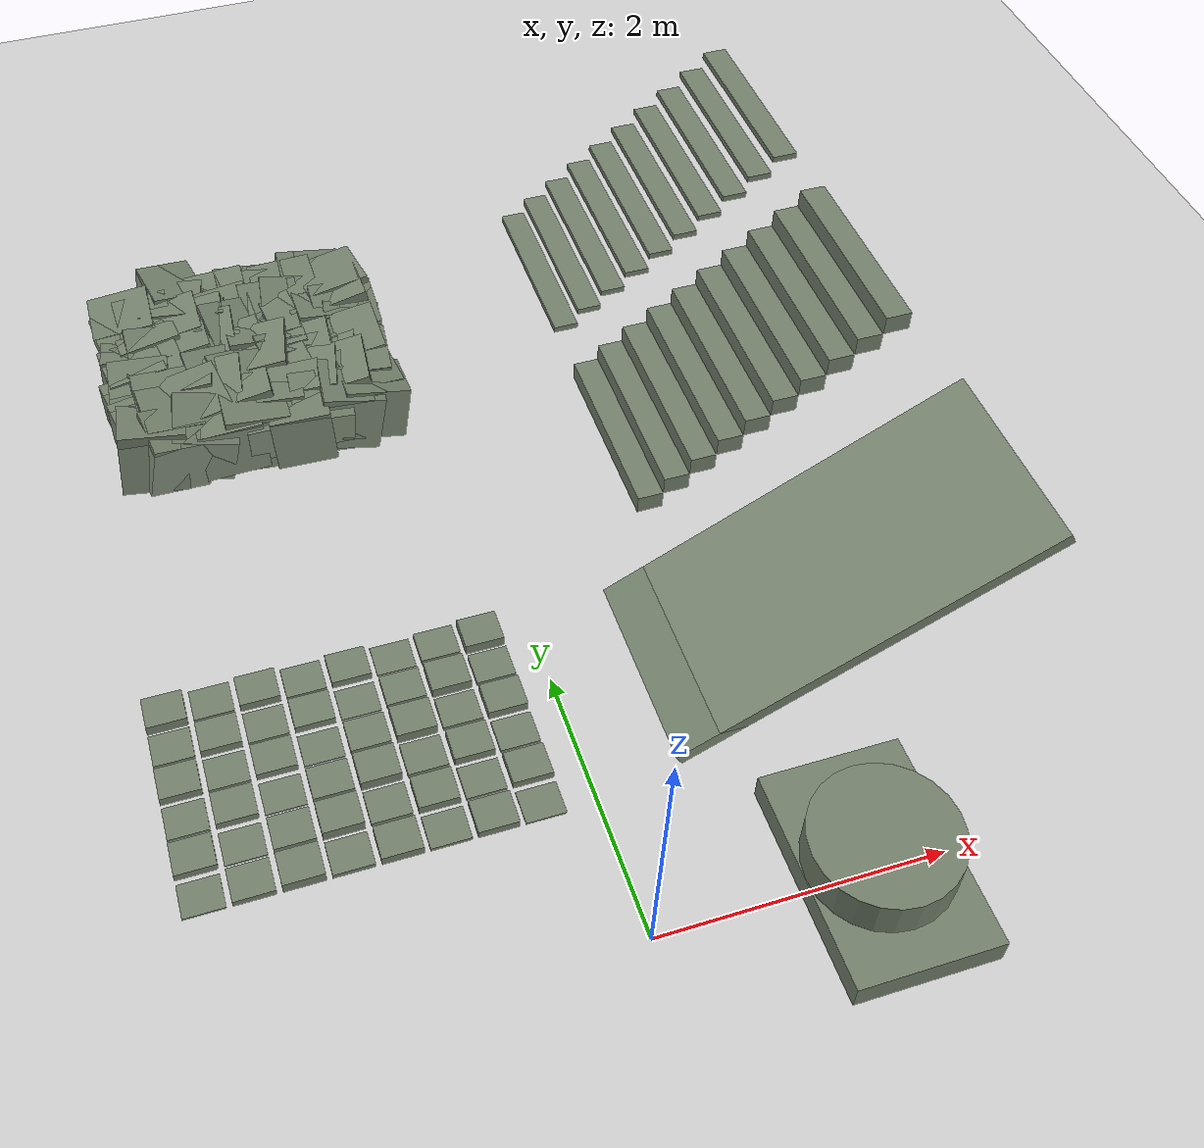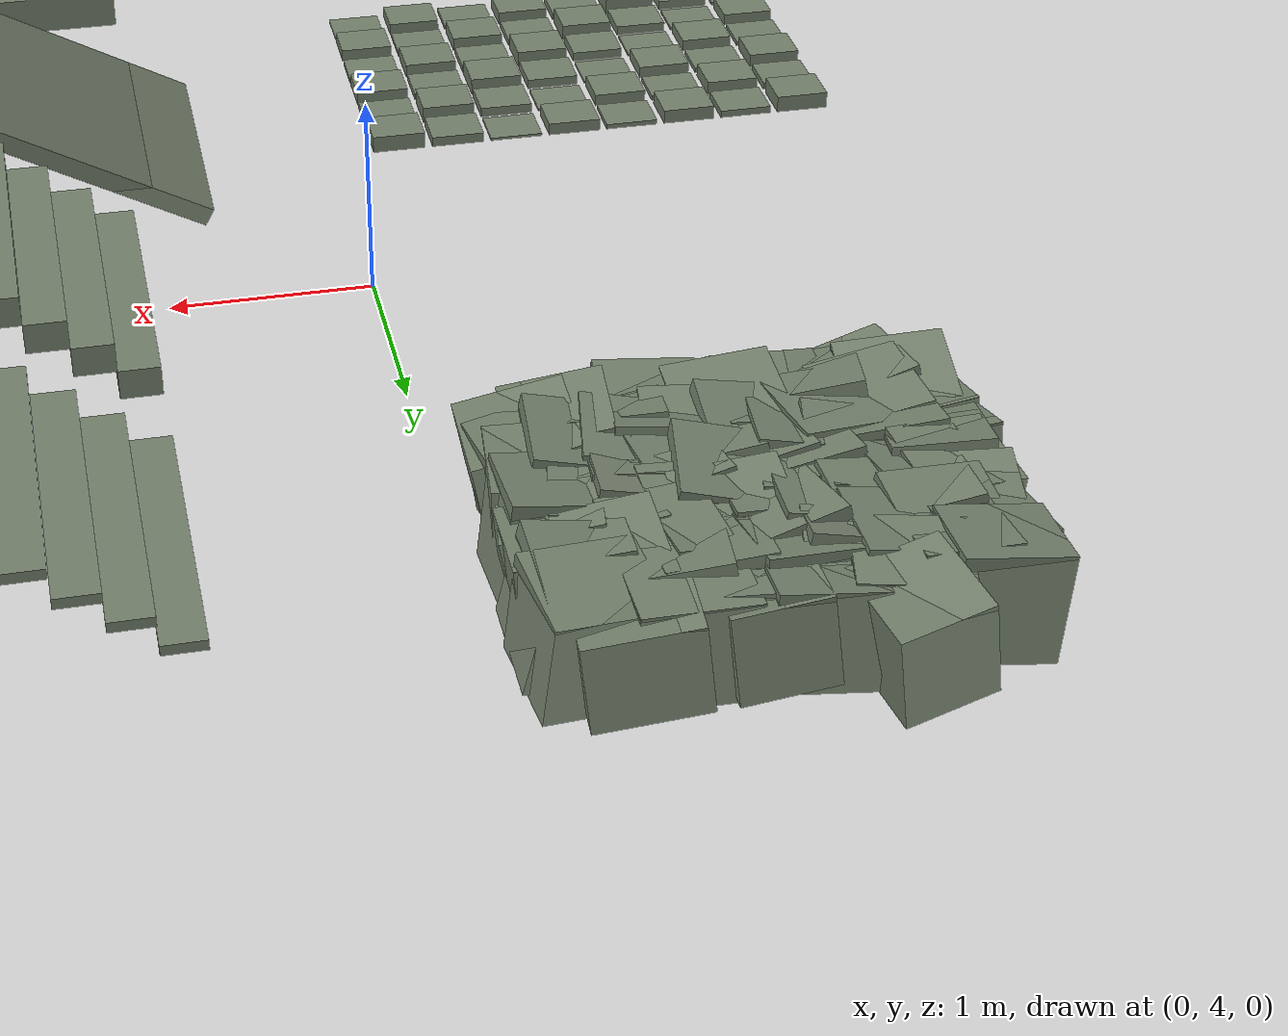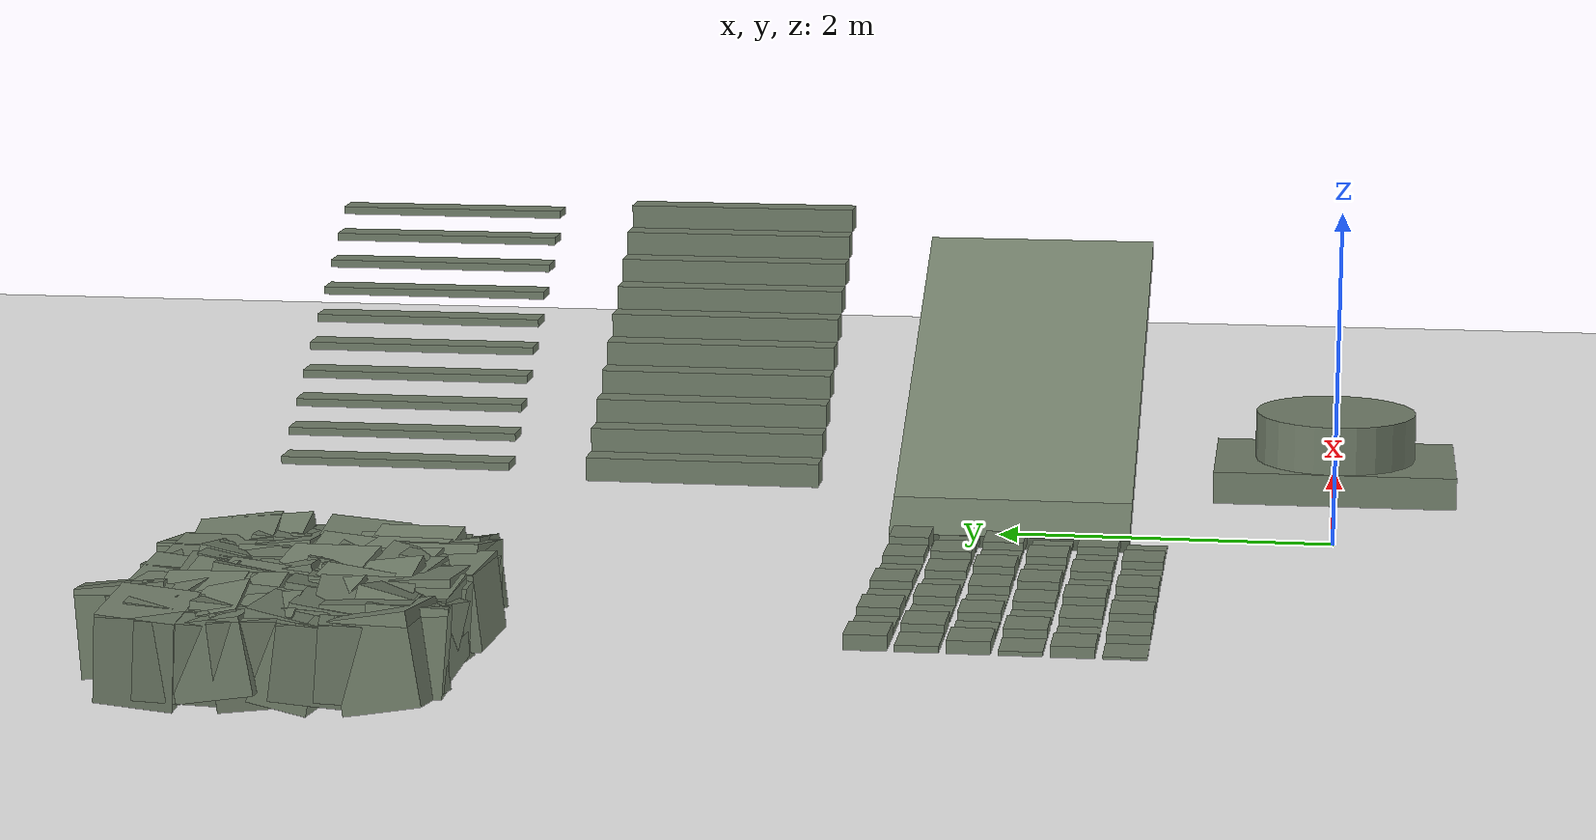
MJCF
<mujoco model="orca_primitive_terrain">
  <asset>
    <material name="terrain_mat" rgba="0.45 0.50 0.42 1" />
  </asset>
  <statistic center="0 0 0.1" extent="0.8" />
  <visual>
    <headlight diffuse="0.6 0.6 0.6" ambient="0.3 0.3 0.3" specular="0 0 0" />
    <rgba haze="0.15 0.25 0.35 1" />
    <global azimuth="-130" elevation="-20" />
  </visual>
  <worldbody>
    <light pos="0 0 1.5" dir="0 0 -1" directional="true" />
    <geom name="floor" size="0 0 0.05" type="plane" material="terrain_mat" contype="1" conaffinity="1" friction="0.9 0.005 0.0001" />
    <geom pos="1.5 0.0 0.1" type="box" size="0.5 0.75 0.1" quat="1.0 0.0 0.0 0.0" material="terrain_mat" contype="1" conaffinity="1" friction="0.9 0.005 0.0001" />
    <geom pos="1.5 0.0 0.25" type="cylinder" size="0.5 0.25 0.25" quat="1.0 0.0 0.0 0.0" material="terrain_mat" contype="1" conaffinity="1" friction="0.9 0.005 0.0001" />
    <geom pos="2.0 2.0 0.5" type="box" size="1.5 0.75 0.05" quat="0.968912421710645 0.0 -0.24740395925452296 0.0" material="terrain_mat" contype="1" conaffinity="1" friction="0.9 0.005 0.0001" />
    <geom pos="1.2 4.0 0.075" type="box" size="0.1 0.75 0.075" quat="1.0 0.0 0.0 0.0" material="terrain_mat" contype="1" conaffinity="1" friction="0.9 0.005 0.0001" />
    <geom pos="1.4 4.0 0.22499999999999998" type="box" size="0.1 0.75 0.075" quat="1.0 0.0 0.0 0.0" material="terrain_mat" contype="1" conaffinity="1" friction="0.9 0.005 0.0001" />
    <geom pos="1.6 4.0 0.375" type="box" size="0.1 0.75 0.075" quat="1.0 0.0 0.0 0.0" material="terrain_mat" contype="1" conaffinity="1" friction="0.9 0.005 0.0001" />
    <geom pos="1.8 4.0 0.525" type="box" size="0.1 0.75 0.075" quat="1.0 0.0 0.0 0.0" material="terrain_mat" contype="1" conaffinity="1" friction="0.9 0.005 0.0001" />
    <geom pos="2.0 4.0 0.675" type="box" size="0.1 0.75 0.075" quat="1.0 0.0 0.0 0.0" material="terrain_mat" contype="1" conaffinity="1" friction="0.9 0.005 0.0001" />
    <geom pos="2.2 4.0 0.8250000000000001" type="box" size="0.1 0.75 0.075" quat="1.0 0.0 0.0 0.0" material="terrain_mat" contype="1" conaffinity="1" friction="0.9 0.005 0.0001" />
    <geom pos="2.4 4.0 0.9750000000000001" type="box" size="0.1 0.75 0.075" quat="1.0 0.0 0.0 0.0" material="terrain_mat" contype="1" conaffinity="1" friction="0.9 0.005 0.0001" />
    <geom pos="2.5999999999999996 4.0 1.125" type="box" size="0.1 0.75 0.075" quat="1.0 0.0 0.0 0.0" material="terrain_mat" contype="1" conaffinity="1" friction="0.9 0.005 0.0001" />
    <geom pos="2.8 4.0 1.275" type="box" size="0.1 0.75 0.075" quat="1.0 0.0 0.0 0.0" material="terrain_mat" contype="1" conaffinity="1" friction="0.9 0.005 0.0001" />
    <geom pos="3.0 4.0 1.4249999999999998" type="box" size="0.1 0.75 0.075" quat="1.0 0.0 0.0 0.0" material="terrain_mat" contype="1" conaffinity="1" friction="0.9 0.005 0.0001" />
    <geom pos="1.2 6.0 0.075" type="box" size="0.1 0.75 0.024999999999999994" quat="1.0 0.0 0.0 0.0" material="terrain_mat" contype="1" conaffinity="1" friction="0.9 0.005 0.0001" />
    <geom pos="1.4 6.0 0.22499999999999998" type="box" size="0.1 0.75 0.024999999999999994" quat="1.0 0.0 0.0 0.0" material="terrain_mat" contype="1" conaffinity="1" friction="0.9 0.005 0.0001" />
    <geom pos="1.6 6.0 0.375" type="box" size="0.1 0.75 0.024999999999999994" quat="1.0 0.0 0.0 0.0" material="terrain_mat" contype="1" conaffinity="1" friction="0.9 0.005 0.0001" />
    <geom pos="1.8 6.0 0.525" type="box" size="0.1 0.75 0.024999999999999994" quat="1.0 0.0 0.0 0.0" material="terrain_mat" contype="1" conaffinity="1" friction="0.9 0.005 0.0001" />
    <geom pos="2.0 6.0 0.675" type="box" size="0.1 0.75 0.024999999999999994" quat="1.0 0.0 0.0 0.0" material="terrain_mat" contype="1" conaffinity="1" friction="0.9 0.005 0.0001" />
    <geom pos="2.2 6.0 0.8250000000000001" type="box" size="0.1 0.75 0.024999999999999994" quat="1.0 0.0 0.0 0.0" material="terrain_mat" contype="1" conaffinity="1" friction="0.9 0.005 0.0001" />
    <geom pos="2.4 6.0 0.9750000000000001" type="box" size="0.1 0.75 0.024999999999999994" quat="1.0 0.0 0.0 0.0" material="terrain_mat" contype="1" conaffinity="1" friction="0.9 0.005 0.0001" />
    <geom pos="2.5999999999999996 6.0 1.125" type="box" size="0.1 0.75 0.024999999999999994" quat="1.0 0.0 0.0 0.0" material="terrain_mat" contype="1" conaffinity="1" friction="0.9 0.005 0.0001" />
    <geom pos="2.8 6.0 1.275" type="box" size="0.1 0.75 0.024999999999999994" quat="1.0 0.0 0.0 0.0" material="terrain_mat" contype="1" conaffinity="1" friction="0.9 0.005 0.0001" />
    <geom pos="3.0 6.0 1.4249999999999998" type="box" size="0.1 0.75 0.024999999999999994" quat="1.0 0.0 0.0 0.0" material="terrain_mat" contype="1" conaffinity="1" friction="0.9 0.005 0.0001" />
    <geom pos="-2.3004568480001155 5.230133099821309 -0.25" type="box" size="0.2667418434232123 0.23249216246593754 0.2715603840154582" quat="0.9937514109759715 -0.09011523303710722 0.04584049177774514 -0.04728665003473938" material="terrain_mat" contype="1" conaffinity="1" friction="0.9 0.005 0.0001" />
    <geom pos="-2.3004568480001155 5.391515746812814 -0.25" type="box" size="0.2505265313539923 0.2412016313894627 0.2264599735410741" quat="0.9947855832976967 0.0430479213794962 0.004496328850963352 0.0923488102512985" material="terrain_mat" contype="1" conaffinity="1" friction="0.9 0.005 0.0001" />
    <geom pos="-2.3004568480001155 5.632708194664771 -0.25" type="box" size="0.2744568938089314 0.24992449427731162 0.22801643019685697" quat="0.9927267717486197 0.07160131296835394 -0.005361370104009311 0.09663366051940456" material="terrain_mat" contype="1" conaffinity="1" friction="0.9 0.005 0.0001" />
    <geom pos="-2.3004568480001155 5.798990692476225 -0.25" type="box" size="0.24325500647900072 0.2253568952181176 0.26629093934549475" quat="0.9942381647366705 0.09525301325965287 0.00794678229822832 -0.048519932987572345" material="terrain_mat" contype="1" conaffinity="1" friction="0.9 0.005 0.0001" />
    <geom pos="-2.3004568480001155 5.973541127254212 -0.25" type="box" size="0.2398510354361266 0.24285052907373605 0.26474659664781297" quat="0.9964084612238755 -0.04106533003165011 -0.0363795415854814 0.06450074437470632" material="terrain_mat" contype="1" conaffinity="1" friction="0.9 0.005 0.0001" />
    <geom pos="-2.3004568480001155 6.1770510315939235 -0.25" type="box" size="0.25720829764278585 0.23711879563200236 0.22878298749776027" quat="0.9937658772683013 -0.08834725270306294 0.0169573991826565 -0.06585279591592566" material="terrain_mat" contype="1" conaffinity="1" friction="0.9 0.005 0.0001" />
    <geom pos="-2.3004568480001155 6.407180520840007 -0.25" type="box" size="0.24754562515074474 0.25947160159627974 0.23928331743280107" quat="0.9958964892628885 0.04305664599570697 -0.045399565427206114 0.0653849169799509" material="terrain_mat" contype="1" conaffinity="1" friction="0.9 0.005 0.0001" />
    <geom pos="-2.3004568480001155 6.629340270719652 -0.25" type="box" size="0.2547590853159438 0.2314305783929404 0.268237133040538" quat="0.9972993669391019 0.044601800582484905 -0.05693885512370222 -0.012752210195468728" material="terrain_mat" contype="1" conaffinity="1" friction="0.9 0.005 0.0001" />
    <geom pos="-2.1403960142105545 5.169451405171494 -0.25" type="box" size="0.24860553780818326 0.2298644058617868 0.2557271181931712" quat="0.9914709750904385 0.03140703504746152 0.09964006753412274 0.07791508611647713" material="terrain_mat" contype="1" conaffinity="1" friction="0.9 0.005 0.0001" />
    <geom pos="-2.1403960142105545 5.365443034016214 -0.25" type="box" size="0.2291512386430681 0.25867181712863563 0.27347983292603073" quat="0.9971489888939771 -0.012801738465963004 0.06299248639499276 0.039521590273487665" material="terrain_mat" contype="1" conaffinity="1" friction="0.9 0.005 0.0001" />
    <geom pos="-2.1403960142105545 5.564856717019695 -0.25" type="box" size="0.23402731407731425 0.26579436660697997 0.2553901560684408" quat="0.9966301905043169 0.07818366455605208 0.024123866909938566 0.005798018388017237" material="terrain_mat" contype="1" conaffinity="1" friction="0.9 0.005 0.0001" />
    <geom pos="-2.1403960142105545 5.718290300524951 -0.25" type="box" size="0.26305873229776777 0.22976833293040352 0.2368622332864588" quat="0.9965179080213955 0.04103949917917902 0.06351715359390735 0.035119648334118" material="terrain_mat" contype="1" conaffinity="1" friction="0.9 0.005 0.0001" />
    <geom pos="-2.1403960142105545 5.937021976021513 -0.25" type="box" size="0.25829997576988234 0.23777318710233433 0.24146425783496483" quat="0.9934945982010286 0.06600502560370954 -0.06390951813814603 0.06728590812183728" material="terrain_mat" contype="1" conaffinity="1" friction="0.9 0.005 0.0001" />
    <geom pos="-2.1403960142105545 6.139922384241892 -0.25" type="box" size="0.23653538925627735 0.2436978135416446 0.240333142471557" quat="0.9965532548871666 0.03912419743215279 0.07314101139716957 0.0011400881032193077" material="terrain_mat" contype="1" conaffinity="1" friction="0.9 0.005 0.0001" />
    <geom pos="-2.1403960142105545 6.301771003196722 -0.25" type="box" size="0.2531389078197739 0.24480016352294456 0.2504805521908677" quat="0.9929737504129765 -0.09338521837305551 -0.05209114295204799 0.05068377261169358" material="terrain_mat" contype="1" conaffinity="1" friction="0.9 0.005 0.0001" />
    <geom pos="-2.1403960142105545 6.507865639382873 -0.25" type="box" size="0.2276301834358782 0.26649607136000125 0.257729055845175" quat="0.9978879006215207 0.06064426844548832 -0.013463574733080436 0.01899322651086425" material="terrain_mat" contype="1" conaffinity="1" friction="0.9 0.005 0.0001" />
    <geom pos="-1.8913580852312173 5.241268832370592 -0.25" type="box" size="0.2626219760929962 0.24411637158707777 0.2607077194593069" quat="0.9875355197654081 0.10169530993875045 0.08550302030532102 -0.0843853936223203" material="terrain_mat" contype="1" conaffinity="1" friction="0.9 0.005 0.0001" />
    <geom pos="-1.8913580852312173 5.471949466771439 -0.25" type="box" size="0.2602767497051143 0.273953920565642 0.27337839148294096" quat="0.9958713146560139 0.025763189149319767 -0.029456230012379816 0.08190795592381117" material="terrain_mat" contype="1" conaffinity="1" friction="0.9 0.005 0.0001" />
    <geom pos="-1.8913580852312173 5.710208626029221 -0.25" type="box" size="0.23410940494091387 0.2367080582839282 0.24568630976566702" quat="0.9897189155738972 -0.08734156791079449 -0.08044028159717216 -0.07973255148733269" material="terrain_mat" contype="1" conaffinity="1" friction="0.9 0.005 0.0001" />
    <geom pos="-1.8913580852312173 5.955348349118732 -0.25" type="box" size="0.23982897662316305 0.23800117277662278 0.2398222460937144" quat="0.9952418019176436 0.05430372873578345 -0.07866554086694699 0.018883681876785678" material="terrain_mat" contype="1" conaffinity="1" friction="0.9 0.005 0.0001" />
    <geom pos="-1.8913580852312173 6.185979720159965 -0.25" type="box" size="0.2462147197863695 0.23219524695551647 0.2711440904263542" quat="0.9982254065785714 -0.011567722302419247 -0.05642983491193701 0.015096330467764624" material="terrain_mat" contype="1" conaffinity="1" friction="0.9 0.005 0.0001" />
    <geom pos="-1.8913580852312173 6.4251426885516025 -0.25" type="box" size="0.23523910319808664 0.23480755129856565 0.2692163752500142" quat="0.9968448648091833 -0.003964163248548163 -0.07915930034105623 0.004290231091029004" material="terrain_mat" contype="1" conaffinity="1" friction="0.9 0.005 0.0001" />
    <geom pos="-1.8913580852312173 6.632084792336812 -0.25" type="box" size="0.2603836051705248 0.2293842626424212 0.26630834239542744" quat="0.9942544585183625 -0.03847116757612908 -0.015013446725097508 -0.09875544237721844" material="terrain_mat" contype="1" conaffinity="1" friction="0.9 0.005 0.0001" />
    <geom pos="-1.8913580852312173 6.8677842882805304 -0.25" type="box" size="0.22682173018977822 0.25620373771208627 0.2590106178200968" quat="0.9917966349039323 -0.04622336464814654 0.08055478391174208 0.08782802709142892" material="terrain_mat" contype="1" conaffinity="1" friction="0.9 0.005 0.0001" />
    <geom pos="-1.6798294713431876 5.216238277949043 -0.25" type="box" size="0.2632521212844899 0.2402658144953708 0.24841784794218005" quat="0.9997799409897189 -0.003276721590235065 -0.020688201582637684 -0.0011536921125319332" material="terrain_mat" contype="1" conaffinity="1" friction="0.9 0.005 0.0001" />
    <geom pos="-1.6798294713431876 5.386856114907906 -0.25" type="box" size="0.26672713061026987 0.24844660721532208 0.23313692749728976" quat="0.9952829473710711 0.07407221696833978 -0.013859958088202382 -0.061098796285541615" material="terrain_mat" contype="1" conaffinity="1" friction="0.9 0.005 0.0001" />
    <geom pos="-1.6798294713431876 5.591071097018706 -0.25" type="box" size="0.23246847630546943 0.25230360402816476 0.26125984794942364" quat="0.9935207484320158 0.05042174247872936 -0.08002771662650093 -0.06300583220658486" material="terrain_mat" contype="1" conaffinity="1" friction="0.9 0.005 0.0001" />
    <geom pos="-1.6798294713431876 5.741842048926222 -0.25" type="box" size="0.2535630104904315 0.24795359449084495 0.2463449562851746" quat="0.9940727390106978 0.07645301721135746 0.05888786747389042 0.0500654050161026" material="terrain_mat" contype="1" conaffinity="1" friction="0.9 0.005 0.0001" />
    <geom pos="-1.6798294713431876 5.905363306176914 -0.25" type="box" size="0.27072344768948214 0.22692489903878324 0.25032679935595825" quat="0.9977180574934882 0.021245636186625227 -0.03211110830763 -0.05546329793388168" material="terrain_mat" contype="1" conaffinity="1" friction="0.9 0.005 0.0001" />
    <geom pos="-1.6798294713431876 6.15296609717695 -0.25" type="box" size="0.27075061156330754 0.2600061673600183 0.2621071701382346" quat="0.9954121140543586 0.05159092291611383 -0.07045052751410034 -0.039112952323769316" material="terrain_mat" contype="1" conaffinity="1" friction="0.9 0.005 0.0001" />
    <geom pos="-1.6798294713431876 6.366743216660697 -0.25" type="box" size="0.23450857272964362 0.2407163023193743 0.2666025413500864" quat="0.9922247127582067 0.07575177513114786 -0.09279467536142899 -0.03377774683043695" material="terrain_mat" contype="1" conaffinity="1" friction="0.9 0.005 0.0001" />
    <geom pos="-1.6798294713431876 6.551643355280989 -0.25" type="box" size="0.26049187301894283 0.27022426120507964 0.23971723837257095" quat="0.9892928509960738 -0.10100280472577938 -0.0600366609488913 -0.0865660889014509" material="terrain_mat" contype="1" conaffinity="1" friction="0.9 0.005 0.0001" />
    <geom pos="-1.4765163584841376 5.243937334992851 -0.25" type="box" size="0.26136834696977396 0.2523172670818107 0.2654694500155096" quat="0.9985049365903822 -0.02950096022889073 0.04556436314956665 -0.00644001249885379" material="terrain_mat" contype="1" conaffinity="1" friction="0.9 0.005 0.0001" />
    <geom pos="-1.4765163584841376 5.480410750662077 -0.25" type="box" size="0.2440914363505842 0.25654690520997264 0.2583881995141055" quat="0.9933328589616501 -0.06913812509184492 -0.09136238609169695 -0.012754033616475648" material="terrain_mat" contype="1" conaffinity="1" friction="0.9 0.005 0.0001" />
    <geom pos="-1.4765163584841376 5.671235516827659 -0.25" type="box" size="0.267137477516981 0.23005560417856358 0.24452561156808555" quat="0.9940257850736071 0.051254350696765066 0.06721387336133489 0.06905088972068747" material="terrain_mat" contype="1" conaffinity="1" friction="0.9 0.005 0.0001" />
    <geom pos="-1.4765163584841376 5.845102562083532 -0.25" type="box" size="0.25941410073895627 0.24466997366532126 0.24443215657180062" quat="0.9984794775297112 0.04477338473757268 0.03200898692652765 0.0030824871571849344" material="terrain_mat" contype="1" conaffinity="1" friction="0.9 0.005 0.0001" />
    <geom pos="-1.4765163584841376 6.010575440437007 -0.25" type="box" size="0.26435857520274697 0.23236342580867092 0.24142028047228445" quat="0.9988398514879413 0.024463332973345336 -0.03172619531082579 0.026719748323726804" material="terrain_mat" contype="1" conaffinity="1" friction="0.9 0.005 0.0001" />
    <geom pos="-1.4765163584841376 6.23782046041485 -0.25" type="box" size="0.24731691273440778 0.25843666448052316 0.2710876107672864" quat="0.9885864324283745 0.08290722719127752 0.09790149547395594 0.07898452052114466" material="terrain_mat" contype="1" conaffinity="1" friction="0.9 0.005 0.0001" />
    <geom pos="-1.4765163584841376 6.44930631573619 -0.25" type="box" size="0.24193344533885286 0.23138582308048286 0.26168496711942596" quat="0.9958233764692439 0.07917403843656666 -0.02581247498391686 0.03742980964745321" material="terrain_mat" contype="1" conaffinity="1" friction="0.9 0.005 0.0001" />
    <geom pos="-1.4765163584841376 6.684566195548674 -0.25" type="box" size="0.2472173291178155 0.22976521336220676 0.24579788179058876" quat="0.9972709256786985 0.05344665943858395 -0.04768801960369878 -0.01788877237504326" material="terrain_mat" contype="1" conaffinity="1" friction="0.9 0.005 0.0001" />
    <geom pos="-1.2836828006996281 5.233446740475545 -0.25" type="box" size="0.270942684859463 0.26600855236486054 0.2296077997678793" quat="0.9990002946606846 0.04415559586693775 -0.005684427367154231 -0.004047456856993205" material="terrain_mat" contype="1" conaffinity="1" friction="0.9 0.005 0.0001" />
    <geom pos="-1.2836828006996281 5.446684944046352 -0.25" type="box" size="0.27057165150527335 0.26104170501325036 0.24775613085616044" quat="0.9973272818901999 -0.03585324604105891 -0.0027768638379429824 -0.0636013095230833" material="terrain_mat" contype="1" conaffinity="1" friction="0.9 0.005 0.0001" />
    <geom pos="-1.2836828006996281 5.611103486144901 -0.25" type="box" size="0.2581954354219156 0.2469368219651923 0.24036756098125636" quat="0.9936312966887875 0.09017870480124786 0.06642617029778168 -0.012337396017719982" material="terrain_mat" contype="1" conaffinity="1" friction="0.9 0.005 0.0001" />
    <geom pos="-1.2836828006996281 5.849517593571514 -0.25" type="box" size="0.27467145474022 0.27400068490578466 0.2735778012229137" quat="0.9916347981074018 -0.026604654441189333 -0.09638112447022586 -0.08162902909144508" material="terrain_mat" contype="1" conaffinity="1" friction="0.9 0.005 0.0001" />
    <geom pos="-1.2836828006996281 6.08784409988581 -0.25" type="box" size="0.2572816459813805 0.259301331764223 0.2497915058099132" quat="0.9950820743411886 -0.09067596276893386 0.03956525467724424 0.004911794284056946" material="terrain_mat" contype="1" conaffinity="1" friction="0.9 0.005 0.0001" />
    <geom pos="-1.2836828006996281 6.268302962193964 -0.25" type="box" size="0.26840679557573427 0.24608249031753818 0.23034148085004616" quat="0.9987264631057741 -0.005999555326392561 0.04977616980667998 0.005638275223276664" material="terrain_mat" contype="1" conaffinity="1" friction="0.9 0.005 0.0001" />
    <geom pos="-1.2836828006996281 6.452965455077986 -0.25" type="box" size="0.2696615447897929 0.26081661469724077 0.23398787146820288" quat="0.9989612372925927 0.017841649129852092 -0.019554827865776687 -0.03709084321393417" material="terrain_mat" contype="1" conaffinity="1" friction="0.9 0.005 0.0001" />
    <geom pos="-1.2836828006996281 6.654951201007293 -0.25" type="box" size="0.22785209566881853 0.27041411182510716 0.22695289141832098" quat="0.9976808082331692 0.03654751908061864 0.0573881794303459 -0.001969922316485568" material="terrain_mat" contype="1" conaffinity="1" friction="0.9 0.005 0.0001" />
    <geom pos="-1.1022240076453693 5.169887315101382 -0.25" type="box" size="0.24568156256299087 0.2635458084468657 0.23696692094202776" quat="0.9976285263249234 -0.04727185302576902 -0.02566280149473634 -0.042943171677399916" material="terrain_mat" contype="1" conaffinity="1" friction="0.9 0.005 0.0001" />
    <geom pos="-1.1022240076453693 5.372429939447899 -0.25" type="box" size="0.2516688550863544 0.23578708851703795 0.24914385885416668" quat="0.9941624724694053 0.09013134822717399 -0.04630034936782676 -0.03706205672502057" material="terrain_mat" contype="1" conaffinity="1" friction="0.9 0.005 0.0001" />
    <geom pos="-1.1022240076453693 5.6137494696611645 -0.25" type="box" size="0.22749023618822067 0.24285395850499641 0.24637028208799674" quat="0.9967312863374155 0.005751481746199076 -0.05486898441393531 0.059017436773105766" material="terrain_mat" contype="1" conaffinity="1" friction="0.9 0.005 0.0001" />
    <geom pos="-1.1022240076453693 5.770800416787369 -0.25" type="box" size="0.2276194600060337 0.2435732223750303 0.24204342448231905" quat="0.9920706838842173 0.06455834978420948 0.0818398501660238 0.0702155009627047" material="terrain_mat" contype="1" conaffinity="1" friction="0.9 0.005 0.0001" />
    <geom pos="-1.1022240076453693 6.010227875016116 -0.25" type="box" size="0.23543804149884645 0.2269013461561202 0.24892831056369055" quat="0.998711981938567 -0.03666909121332045 -0.03413771353158816 0.008023178719471372" material="terrain_mat" contype="1" conaffinity="1" friction="0.9 0.005 0.0001" />
    <geom pos="-1.1022240076453693 6.1826505134127485 -0.25" type="box" size="0.24899669756063647 0.26476302864941026 0.23114478496336716" quat="0.9953459379310479 0.017391324820533183 -0.06570106494388459 0.06831819472431061" material="terrain_mat" contype="1" conaffinity="1" friction="0.9 0.005 0.0001" />
    <geom pos="-1.1022240076453693 6.388783936685348 -0.25" type="box" size="0.25120043442125733 0.26689280714606495 0.24739435973617288" quat="0.9952950358990744 0.0890051431533475 0.03711428378869703 -0.009402443606032512" material="terrain_mat" contype="1" conaffinity="1" friction="0.9 0.005 0.0001" />
    <geom pos="-1.1022240076453693 6.587736073361409 -0.25" type="box" size="0.2642095458486848 0.24402513111878274 0.2283749318977764" quat="0.9945884112549138 0.06171449469705757 0.01930392852096236 -0.0813177206110156" material="terrain_mat" contype="1" conaffinity="1" friction="0.9 0.005 0.0001" />
    <geom pos="-0.9187514747556267 5.228003088997437 -0.25" type="box" size="0.24129840773289313 0.24455559893829074 0.2445571703602056" quat="0.9953979563394082 0.08620026031447912 0.017037154839366485 -0.03823818761429045" material="terrain_mat" contype="1" conaffinity="1" friction="0.9 0.005 0.0001" />
    <geom pos="-0.9187514747556267 5.477124560461694 -0.25" type="box" size="0.24144830521194344 0.24988466026108996 0.2605757117908711" quat="0.9930966738408729 -0.02303914715636593 -0.07543241677172038 -0.08682248904793939" material="terrain_mat" contype="1" conaffinity="1" friction="0.9 0.005 0.0001" />
    <geom pos="-0.9187514747556267 5.6503609706110804 -0.25" type="box" size="0.23011493841284475 0.26688543937158404 0.23459245932111464" quat="0.995309745085509 0.0812194368838277 -0.028988475523879075 -0.043835860854957456" material="terrain_mat" contype="1" conaffinity="1" friction="0.9 0.005 0.0001" />
    <geom pos="-0.9187514747556267 5.8167410379088915 -0.25" type="box" size="0.2696701537399713 0.22808315813449612 0.24632246265018862" quat="0.9941630275322185 0.03659276523626464 -0.09418317633389955 -0.03782027916336502" material="terrain_mat" contype="1" conaffinity="1" friction="0.9 0.005 0.0001" />
    <geom pos="-0.9187514747556267 5.973448532783488 -0.25" type="box" size="0.26529485159027155 0.2568090828246225 0.22616198518784458" quat="0.9934152082258639 -0.0668204374116078 0.015261332203502648 0.09180601804380455" material="terrain_mat" contype="1" conaffinity="1" friction="0.9 0.005 0.0001" />
    <geom pos="-0.9187514747556267 6.208232057412713 -0.25" type="box" size="0.2463750931460119 0.23519736105411657 0.2618256268798009" quat="0.9980851779059088 -0.01670862812995911 -3.238808720187859e-05 0.05955500265768949" material="terrain_mat" contype="1" conaffinity="1" friction="0.9 0.005 0.0001" />
    <geom pos="-0.9187514747556267 6.439579230099216 -0.25" type="box" size="0.2671845676845725 0.23031566769931494 0.24269863858722673" quat="0.9922913628004445 0.08627005615594627 0.0653962412457561 -0.060321309281323385" material="terrain_mat" contype="1" conaffinity="1" friction="0.9 0.005 0.0001" />
    <geom pos="-0.9187514747556267 6.633593518531561 -0.25" type="box" size="0.27010683807652197 0.24026832629919917 0.2557918997199297" quat="0.9999490997296441 0.00028597626760271176 -0.008743036015975394 0.005027473388523378" material="terrain_mat" contype="1" conaffinity="1" friction="0.9 0.005 0.0001" />
    <geom pos="-0.6893496373603325 5.248968856916747 -0.25" type="box" size="0.2534396264226809 0.2550821014195557 0.2650999344163818" quat="0.9951379017729395 -0.009374906590221065 0.08659926506304164 -0.04596993443455758" material="terrain_mat" contype="1" conaffinity="1" friction="0.9 0.005 0.0001" />
    <geom pos="-0.6893496373603325 5.461239078170235 -0.25" type="box" size="0.27229416577728716 0.26237025850176243 0.2609095281015494" quat="0.9938642581071668 -0.016468144238788375 -0.09891284963880534 -0.04667852674145426" material="terrain_mat" contype="1" conaffinity="1" friction="0.9 0.005 0.0001" />
    <geom pos="-0.6893496373603325 5.687178260089661 -0.25" type="box" size="0.23752403278908404 0.24697938830167748 0.22849345269591703" quat="0.9934662197384913 -0.04679303055164773 0.04759125915532222 -0.09257620959142457" material="terrain_mat" contype="1" conaffinity="1" friction="0.9 0.005 0.0001" />
    <geom pos="-0.6893496373603325 5.872882308537633 -0.25" type="box" size="0.24532351042284706 0.2346108686684232 0.23000406308837146" quat="0.9927088825119093 -0.020825844871975006 -0.07387314031868909 -0.0929414757079957" material="terrain_mat" contype="1" conaffinity="1" friction="0.9 0.005 0.0001" />
    <geom pos="-0.6893496373603325 6.041093594701471 -0.25" type="box" size="0.2400001363070752 0.23338893797592625 0.23790746686600803" quat="0.9938226730954234 0.05804194043958964 0.018064293769886098 0.09285100366754209" material="terrain_mat" contype="1" conaffinity="1" friction="0.9 0.005 0.0001" />
    <geom pos="-0.6893496373603325 6.255174847428153 -0.25" type="box" size="0.23526596901866062 0.24028315614672 0.25067741337911276" quat="0.9968794677864197 -0.0562851518151626 0.055258342000963814 0.003134330919540954" material="terrain_mat" contype="1" conaffinity="1" friction="0.9 0.005 0.0001" />
    <geom pos="-0.6893496373603325 6.482563337699631 -0.25" type="box" size="0.2371955841450388 0.23449361110299885 0.22578295347747088" quat="0.9983417083561725 0.019060355462012728 0.0390427253010296 -0.037765087146858146" material="terrain_mat" contype="1" conaffinity="1" friction="0.9 0.005 0.0001" />
    <geom pos="-0.6893496373603325 6.720404792567244 -0.25" type="box" size="0.2691396588773104 0.24560338138780002 0.22875047396233128" quat="0.9977277785730543 -0.00018196030407207167 0.05888258853415548 -0.0327427476190394" material="terrain_mat" contype="1" conaffinity="1" friction="0.9 0.005 0.0001" />
    <geom pos="-0.5024823808281569 5.243215256907448 -0.25" type="box" size="0.2664190000950855 0.23193429497031293 0.2256412468995084" quat="0.9923480752257597 -0.0775266795954823 0.096093780616666 -0.0009470340146058532" material="terrain_mat" contype="1" conaffinity="1" friction="0.9 0.005 0.0001" />
    <geom pos="-0.5024823808281569 5.408443418302384 -0.25" type="box" size="0.22988754041124168 0.23383904290144142 0.24112107194436588" quat="0.9950978972186256 0.02104571309984771 0.06552972397065362 0.07101484483907931" material="terrain_mat" contype="1" conaffinity="1" friction="0.9 0.005 0.0001" />
    <geom pos="-0.5024823808281569 5.593298346565085 -0.25" type="box" size="0.23937371319909267 0.2613467949248377 0.24575122985464729" quat="0.9984691487491184 -0.007621815772156767 0.010729111312567314 -0.053722928912984906" material="terrain_mat" contype="1" conaffinity="1" friction="0.9 0.005 0.0001" />
    <geom pos="-0.5024823808281569 5.833573467357344 -0.25" type="box" size="0.2621981400994321 0.24827277799235026 0.2599489001761954" quat="0.9965799738925856 0.0461064749899981 -0.06814681716564386 0.00765244473635177" material="terrain_mat" contype="1" conaffinity="1" friction="0.9 0.005 0.0001" />
    <geom pos="-0.5024823808281569 5.987211314681463 -0.25" type="box" size="0.23685424606606761 0.22901316218866397 0.22658193235149277" quat="0.992587295998121 0.042095349114379794 0.090020559870156 -0.06996241996058189" material="terrain_mat" contype="1" conaffinity="1" friction="0.9 0.005 0.0001" />
    <geom pos="-0.5024823808281569 6.191809900984576 -0.25" type="box" size="0.2697477262181022 0.26160032283159856 0.2514154359253294" quat="0.9987428184279926 0.03211553967794984 0.03713990933426557 -0.010099598227023016" material="terrain_mat" contype="1" conaffinity="1" friction="0.9 0.005 0.0001" />
    <geom pos="-0.5024823808281569 6.411285541920249 -0.25" type="box" size="0.26327819993915696 0.2714861589666563 0.2579565419996769" quat="0.9938745790994166 -0.05002470116842947 -0.097675298645099 0.01305321138870088" material="terrain_mat" contype="1" conaffinity="1" friction="0.9 0.005 0.0001" />
    <geom pos="-0.5024823808281569 6.5701617398718914 -0.25" type="box" size="0.26691018196306854 0.2535040767291905 0.26963989926936244" quat="0.9956469229609891 -0.050958369126028226 -0.03839181101974538 0.06794496494188768" material="terrain_mat" contype="1" conaffinity="1" friction="0.9 0.005 0.0001" />
    <geom name="rough_tile_0_0" type="box" pos="-2.600 1.100 0.007" size="0.14 0.12 0.007" material="terrain_mat" contype="1" conaffinity="1" friction="0.9 0.005 0.0001" />
    <geom name="rough_tile_0_1" type="box" pos="-2.600 1.380 0.032" size="0.14 0.12 0.032" material="terrain_mat" contype="1" conaffinity="1" friction="0.9 0.005 0.0001" />
    <geom name="rough_tile_0_2" type="box" pos="-2.600 1.660 0.013" size="0.14 0.12 0.013" material="terrain_mat" contype="1" conaffinity="1" friction="0.9 0.005 0.0001" />
    <geom name="rough_tile_0_3" type="box" pos="-2.600 1.940 0.037" size="0.14 0.12 0.037" material="terrain_mat" contype="1" conaffinity="1" friction="0.9 0.005 0.0001" />
    <geom name="rough_tile_0_4" type="box" pos="-2.600 2.220 0.019" size="0.14 0.12 0.019" material="terrain_mat" contype="1" conaffinity="1" friction="0.9 0.005 0.0001" />
    <geom name="rough_tile_0_5" type="box" pos="-2.600 2.500 0.044" size="0.14 0.12 0.044" material="terrain_mat" contype="1" conaffinity="1" friction="0.9 0.005 0.0001" />
    <geom name="rough_tile_1_0" type="box" pos="-2.280 1.100 0.026" size="0.14 0.12 0.026" material="terrain_mat" contype="1" conaffinity="1" friction="0.9 0.005 0.0001" />
    <geom name="rough_tile_1_1" type="box" pos="-2.280 1.380 0.007" size="0.14 0.12 0.007" material="terrain_mat" contype="1" conaffinity="1" friction="0.9 0.005 0.0001" />
    <geom name="rough_tile_1_2" type="box" pos="-2.280 1.660 0.032" size="0.14 0.12 0.032" material="terrain_mat" contype="1" conaffinity="1" friction="0.9 0.005 0.0001" />
    <geom name="rough_tile_1_3" type="box" pos="-2.280 1.940 0.013" size="0.14 0.12 0.013" material="terrain_mat" contype="1" conaffinity="1" friction="0.9 0.005 0.0001" />
    <geom name="rough_tile_1_4" type="box" pos="-2.280 2.220 0.037" size="0.14 0.12 0.037" material="terrain_mat" contype="1" conaffinity="1" friction="0.9 0.005 0.0001" />
    <geom name="rough_tile_1_5" type="box" pos="-2.280 2.500 0.019" size="0.14 0.12 0.019" material="terrain_mat" contype="1" conaffinity="1" friction="0.9 0.005 0.0001" />
    <geom name="rough_tile_2_0" type="box" pos="-1.960 1.100 0.044" size="0.14 0.12 0.044" material="terrain_mat" contype="1" conaffinity="1" friction="0.9 0.005 0.0001" />
    <geom name="rough_tile_2_1" type="box" pos="-1.960 1.380 0.026" size="0.14 0.12 0.026" material="terrain_mat" contype="1" conaffinity="1" friction="0.9 0.005 0.0001" />
    <geom name="rough_tile_2_2" type="box" pos="-1.960 1.660 0.007" size="0.14 0.12 0.007" material="terrain_mat" contype="1" conaffinity="1" friction="0.9 0.005 0.0001" />
    <geom name="rough_tile_2_3" type="box" pos="-1.960 1.940 0.032" size="0.14 0.12 0.032" material="terrain_mat" contype="1" conaffinity="1" friction="0.9 0.005 0.0001" />
    <geom name="rough_tile_2_4" type="box" pos="-1.960 2.220 0.013" size="0.14 0.12 0.013" material="terrain_mat" contype="1" conaffinity="1" friction="0.9 0.005 0.0001" />
    <geom name="rough_tile_2_5" type="box" pos="-1.960 2.500 0.037" size="0.14 0.12 0.037" material="terrain_mat" contype="1" conaffinity="1" friction="0.9 0.005 0.0001" />
    <geom name="rough_tile_3_0" type="box" pos="-1.640 1.100 0.019" size="0.14 0.12 0.019" material="terrain_mat" contype="1" conaffinity="1" friction="0.9 0.005 0.0001" />
    <geom name="rough_tile_3_1" type="box" pos="-1.640 1.380 0.044" size="0.14 0.12 0.044" material="terrain_mat" contype="1" conaffinity="1" friction="0.9 0.005 0.0001" />
    <geom name="rough_tile_3_2" type="box" pos="-1.640 1.660 0.026" size="0.14 0.12 0.026" material="terrain_mat" contype="1" conaffinity="1" friction="0.9 0.005 0.0001" />
    <geom name="rough_tile_3_3" type="box" pos="-1.640 1.940 0.007" size="0.14 0.12 0.007" material="terrain_mat" contype="1" conaffinity="1" friction="0.9 0.005 0.0001" />
    <geom name="rough_tile_3_4" type="box" pos="-1.640 2.220 0.032" size="0.14 0.12 0.032" material="terrain_mat" contype="1" conaffinity="1" friction="0.9 0.005 0.0001" />
    <geom name="rough_tile_3_5" type="box" pos="-1.640 2.500 0.013" size="0.14 0.12 0.013" material="terrain_mat" contype="1" conaffinity="1" friction="0.9 0.005 0.0001" />
    <geom name="rough_tile_4_0" type="box" pos="-1.320 1.100 0.037" size="0.14 0.12 0.037" material="terrain_mat" contype="1" conaffinity="1" friction="0.9 0.005 0.0001" />
    <geom name="rough_tile_4_1" type="box" pos="-1.320 1.380 0.019" size="0.14 0.12 0.019" material="terrain_mat" contype="1" conaffinity="1" friction="0.9 0.005 0.0001" />
    <geom name="rough_tile_4_2" type="box" pos="-1.320 1.660 0.044" size="0.14 0.12 0.044" material="terrain_mat" contype="1" conaffinity="1" friction="0.9 0.005 0.0001" />
    <geom name="rough_tile_4_3" type="box" pos="-1.320 1.940 0.026" size="0.14 0.12 0.026" material="terrain_mat" contype="1" conaffinity="1" friction="0.9 0.005 0.0001" />
    <geom name="rough_tile_4_4" type="box" pos="-1.320 2.220 0.007" size="0.14 0.12 0.007" material="terrain_mat" contype="1" conaffinity="1" friction="0.9 0.005 0.0001" />
    <geom name="rough_tile_4_5" type="box" pos="-1.320 2.500 0.032" size="0.14 0.12 0.032" material="terrain_mat" contype="1" conaffinity="1" friction="0.9 0.005 0.0001" />
    <geom name="rough_tile_5_0" type="box" pos="-1.000 1.100 0.013" size="0.14 0.12 0.013" material="terrain_mat" contype="1" conaffinity="1" friction="0.9 0.005 0.0001" />
    <geom name="rough_tile_5_1" type="box" pos="-1.000 1.380 0.037" size="0.14 0.12 0.037" material="terrain_mat" contype="1" conaffinity="1" friction="0.9 0.005 0.0001" />
    <geom name="rough_tile_5_2" type="box" pos="-1.000 1.660 0.019" size="0.14 0.12 0.019" material="terrain_mat" contype="1" conaffinity="1" friction="0.9 0.005 0.0001" />
    <geom name="rough_tile_5_3" type="box" pos="-1.000 1.940 0.044" size="0.14 0.12 0.044" material="terrain_mat" contype="1" conaffinity="1" friction="0.9 0.005 0.0001" />
    <geom name="rough_tile_5_4" type="box" pos="-1.000 2.220 0.026" size="0.14 0.12 0.026" material="terrain_mat" contype="1" conaffinity="1" friction="0.9 0.005 0.0001" />
    <geom name="rough_tile_5_5" type="box" pos="-1.000 2.500 0.007" size="0.14 0.12 0.007" material="terrain_mat" contype="1" conaffinity="1" friction="0.9 0.005 0.0001" />
    <geom name="rough_tile_6_0" type="box" pos="-0.680 1.100 0.032" size="0.14 0.12 0.032" material="terrain_mat" contype="1" conaffinity="1" friction="0.9 0.005 0.0001" />
    <geom name="rough_tile_6_1" type="box" pos="-0.680 1.380 0.013" size="0.14 0.12 0.013" material="terrain_mat" contype="1" conaffinity="1" friction="0.9 0.005 0.0001" />
    <geom name="rough_tile_6_2" type="box" pos="-0.680 1.660 0.037" size="0.14 0.12 0.037" material="terrain_mat" contype="1" conaffinity="1" friction="0.9 0.005 0.0001" />
    <geom name="rough_tile_6_3" type="box" pos="-0.680 1.940 0.019" size="0.14 0.12 0.019" material="terrain_mat" contype="1" conaffinity="1" friction="0.9 0.005 0.0001" />
    <geom name="rough_tile_6_4" type="box" pos="-0.680 2.220 0.044" size="0.14 0.12 0.044" material="terrain_mat" contype="1" conaffinity="1" friction="0.9 0.005 0.0001" />
    <geom name="rough_tile_6_5" type="box" pos="-0.680 2.500 0.026" size="0.14 0.12 0.026" material="terrain_mat" contype="1" conaffinity="1" friction="0.9 0.005 0.0001" />
    <geom name="rough_tile_7_0" type="box" pos="-0.360 1.100 0.007" size="0.14 0.12 0.007" material="terrain_mat" contype="1" conaffinity="1" friction="0.9 0.005 0.0001" />
    <geom name="rough_tile_7_1" type="box" pos="-0.360 1.380 0.032" size="0.14 0.12 0.032" material="terrain_mat" contype="1" conaffinity="1" friction="0.9 0.005 0.0001" />
    <geom name="rough_tile_7_2" type="box" pos="-0.360 1.660 0.013" size="0.14 0.12 0.013" material="terrain_mat" contype="1" conaffinity="1" friction="0.9 0.005 0.0001" />
    <geom name="rough_tile_7_3" type="box" pos="-0.360 1.940 0.037" size="0.14 0.12 0.037" material="terrain_mat" contype="1" conaffinity="1" friction="0.9 0.005 0.0001" />
    <geom name="rough_tile_7_4" type="box" pos="-0.360 2.220 0.019" size="0.14 0.12 0.019" material="terrain_mat" contype="1" conaffinity="1" friction="0.9 0.005 0.0001" />
    <geom name="rough_tile_7_5" type="box" pos="-0.360 2.500 0.044" size="0.14 0.12 0.044" material="terrain_mat" contype="1" conaffinity="1" friction="0.9 0.005 0.0001" />
  </worldbody>
</mujoco>
